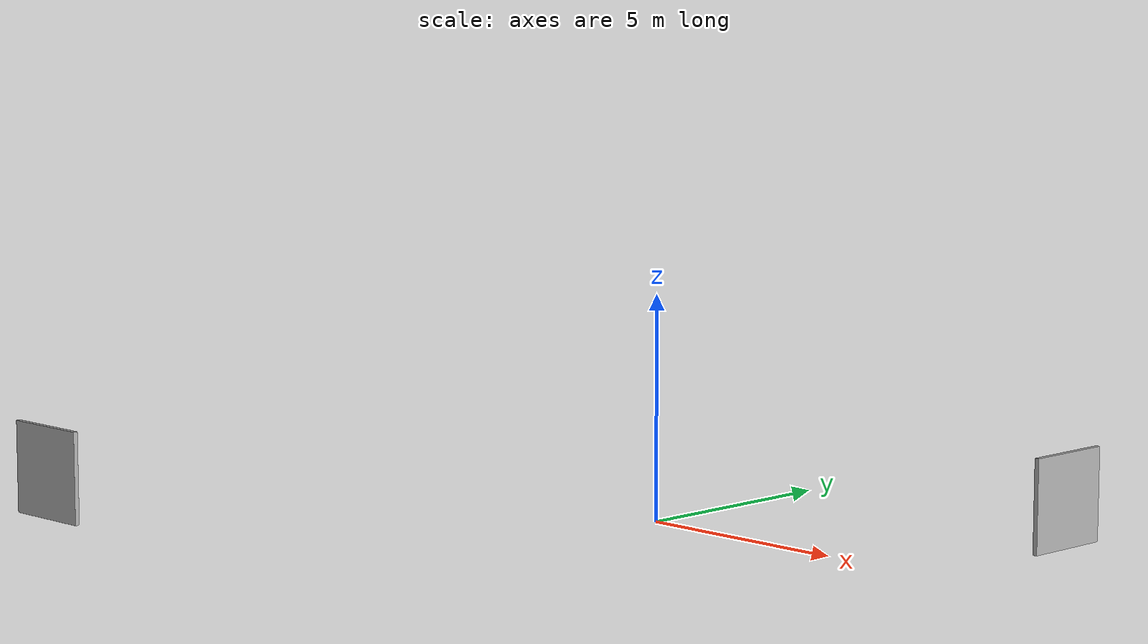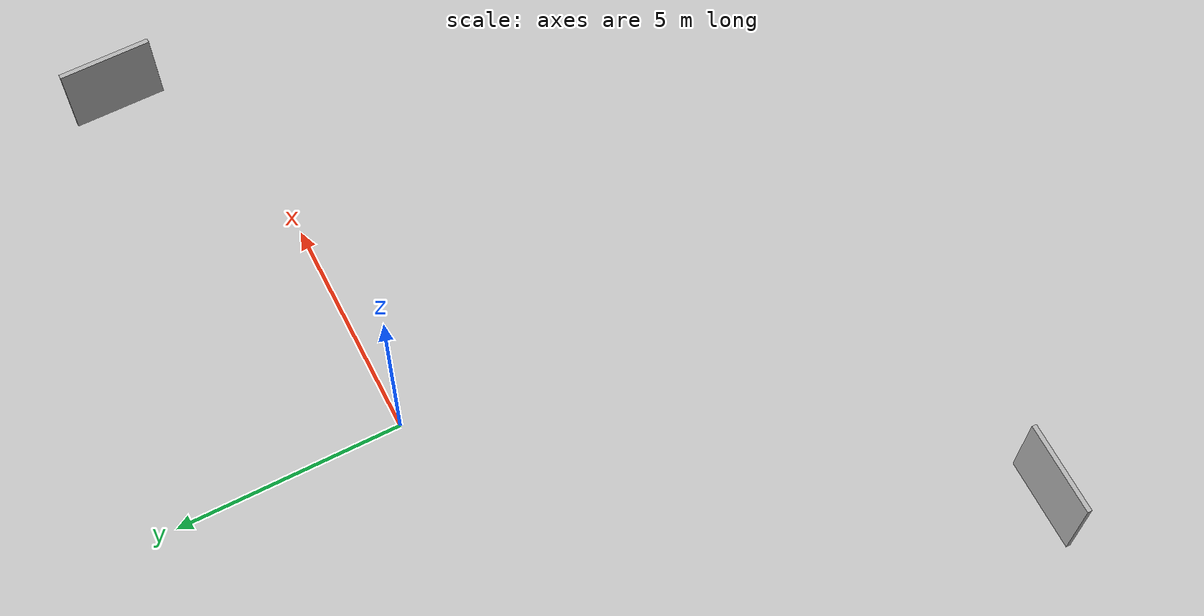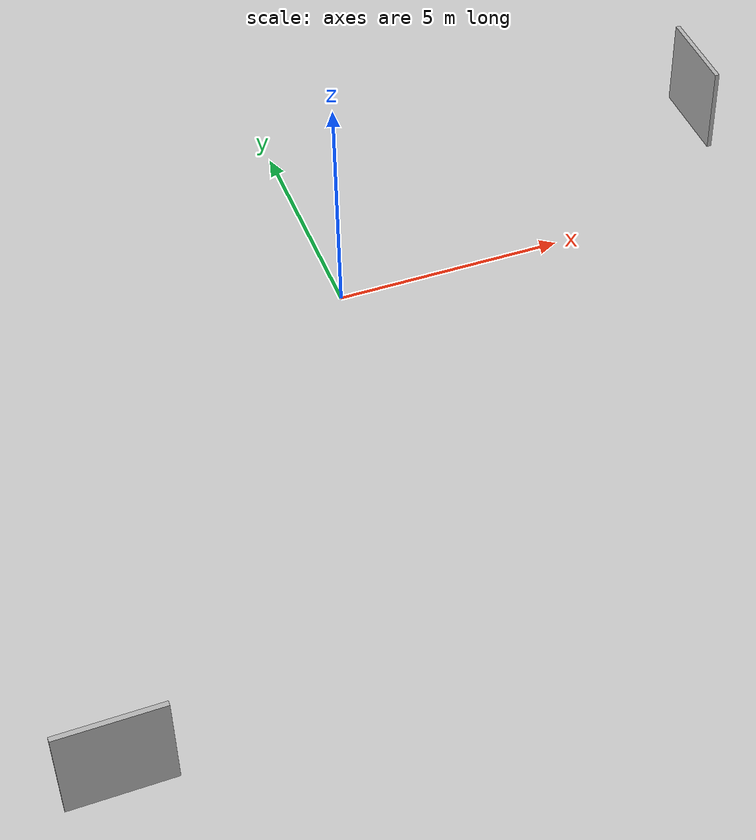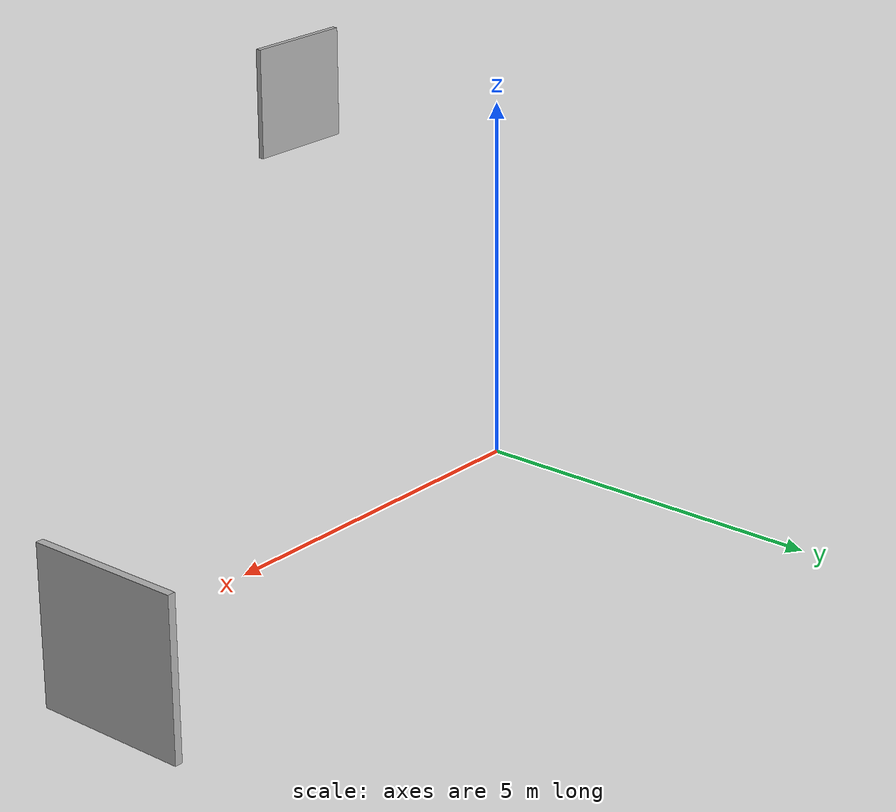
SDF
<?xml version='1.0'?>
<sdf version='1.7'>
  <model name='logo1'>
    <link name='link_5'>
      <inertial>
        <mass>1</mass>
        <inertia>
          <ixx>0.166667</ixx>
          <ixy>0</ixy>
          <ixz>0</ixz>
          <iyy>0.166667</iyy>
          <iyz>0</iyz>
          <izz>0.166667</izz>
        </inertia>
        <pose>0 0 0 0 -0 0</pose>
      </inertial>
      <pose>9.05805 2.31575 0 0 -0 0</pose>
      <gravity>1</gravity>
      <self_collide>0</self_collide>
      <kinematic>0</kinematic>
      <enable_wind>0</enable_wind>
      <visual name='visual'>
        <pose>0.33 0 1.5 0 -0 0</pose>
        <geometry>
          <box>
            <size>0.1 2 2</size>
          </box>
        </geometry>
        <material>
          <lighting>1</lighting>
          <script>
            <uri>model://logo1/materials/scripts</uri>
            <uri>model://logo1/materials/textures</uri>
            <name>logo1/logo</name>
          </script>
          <shader type='pixel'>
            <normal_map>__default__</normal_map>
          </shader>
          <ambient>0.3 0.3 0.3 1</ambient>
          <diffuse>0.7 0.7 0.7 1</diffuse>
          <specular>0.01 0.01 0.01 1</specular>
          <emissive>0 0 0 1</emissive>
        </material>
        <transparency>0</transparency>
        <cast_shadows>1</cast_shadows>
      </visual>
      <collision name='collision'>
        <laser_retro>0</laser_retro>
        <max_contacts>10</max_contacts>
        <pose>0.33 0 1.5 0 -0 0</pose>
        <geometry>
          <box>
            <size>0.1 2 2</size>
          </box>
        </geometry>
        <surface>
          <friction>
            <ode>
              <mu>1</mu>
              <mu2>1</mu2>
              <fdir1>0 0 0</fdir1>
              <slip1>0</slip1>
              <slip2>0</slip2>
            </ode>
            <torsional>
              <coefficient>1</coefficient>
              <patch_radius>0</patch_radius>
              <surface_radius>0</surface_radius>
              <use_patch_radius>1</use_patch_radius>
              <ode>
                <slip>0</slip>
              </ode>
            </torsional>
          </friction>
          <bounce>
            <restitution_coefficient>0</restitution_coefficient>
            <threshold>1e+06</threshold>
          </bounce>
          <contact>
            <collide_without_contact>0</collide_without_contact>
            <collide_without_contact_bitmask>1</collide_without_contact_bitmask>
            <collide_bitmask>1</collide_bitmask>
            <ode>
              <soft_cfm>0</soft_cfm>
              <soft_erp>0.2</soft_erp>
              <kp>1e+13</kp>
              <kd>1</kd>
              <max_vel>0.01</max_vel>
              <min_depth>0</min_depth>
            </ode>
            <bullet>
              <split_impulse>1</split_impulse>
              <split_impulse_penetration_threshold>-0.01</split_impulse_penetration_threshold>
              <soft_cfm>0</soft_cfm>
              <soft_erp>0.2</soft_erp>
              <kp>1e+13</kp>
              <kd>1</kd>
            </bullet>
          </contact>
        </surface>
      </collision>
    </link>
    <link name='link_5_clone'>
      <inertial>
        <mass>1</mass>
        <inertia>
          <ixx>0.166667</ixx>
          <ixy>0</ixy>
          <ixz>0</ixz>
          <iyy>0.166667</iyy>
          <iyz>0</iyz>
          <izz>0.166667</izz>
        </inertia>
        <pose>0 0 0 0 -0 0</pose>
      </inertial>
      <pose>-7.88933 -8.47226 0 0 -0 0</pose>
      <gravity>1</gravity>
      <self_collide>0</self_collide>
      <kinematic>0</kinematic>
      <enable_wind>0</enable_wind>
      <visual name='visual'>
        <pose>0.33 -2.25 1.5 0 -0 1.57</pose>
        <geometry>
          <box>
            <size>0.1 2 2</size>
          </box>
        </geometry>
        <material>
          <lighting>1</lighting>
          <script>
            <uri>model://logo1/materials/scripts</uri>
            <uri>model://logo1/materials/textures</uri>
            <name>logo1/logo</name>
          </script>
          <shader type='pixel'>
            <normal_map>__default__</normal_map>
          </shader>
          <ambient>0.3 0.3 0.3 1</ambient>
          <diffuse>0.7 0.7 0.7 1</diffuse>
          <specular>0.01 0.01 0.01 1</specular>
          <emissive>0 0 0 1</emissive>
        </material>
        <transparency>0</transparency>
        <cast_shadows>1</cast_shadows>
      </visual>
      <collision name='collision'>
        <laser_retro>0</laser_retro>
        <max_contacts>10</max_contacts>
        <pose>0.33 -2.25 1.5 0 -0 1.57</pose>
        <geometry>
          <box>
            <size>0.1 2 2</size>
          </box>
        </geometry>
        <surface>
          <friction>
            <ode>
              <mu>1</mu>
              <mu2>1</mu2>
              <fdir1>0 0 0</fdir1>
              <slip1>0</slip1>
              <slip2>0</slip2>
            </ode>
            <torsional>
              <coefficient>1</coefficient>
              <patch_radius>0</patch_radius>
              <surface_radius>0</surface_radius>
              <use_patch_radius>1</use_patch_radius>
              <ode>
                <slip>0</slip>
              </ode>
            </torsional>
          </friction>
          <bounce>
            <restitution_coefficient>0</restitution_coefficient>
            <threshold>1e+06</threshold>
          </bounce>
          <contact>
            <collide_without_contact>0</collide_without_contact>
            <collide_without_contact_bitmask>1</collide_without_contact_bitmask>
            <collide_bitmask>1</collide_bitmask>
            <ode>
              <soft_cfm>0</soft_cfm>
              <soft_erp>0.2</soft_erp>
              <kp>1e+13</kp>
              <kd>1</kd>
              <max_vel>0.01</max_vel>
              <min_depth>0</min_depth>
            </ode>
            <bullet>
              <split_impulse>1</split_impulse>
              <split_impulse_penetration_threshold>-0.01</split_impulse_penetration_threshold>
              <soft_cfm>0</soft_cfm>
              <soft_erp>0.2</soft_erp>
              <kp>1e+13</kp>
              <kd>1</kd>
            </bullet>
          </contact>
        </surface>
      </collision>
    </link>
    <static>0</static>
    <allow_auto_disable>1</allow_auto_disable>
  </model>
</sdf>
